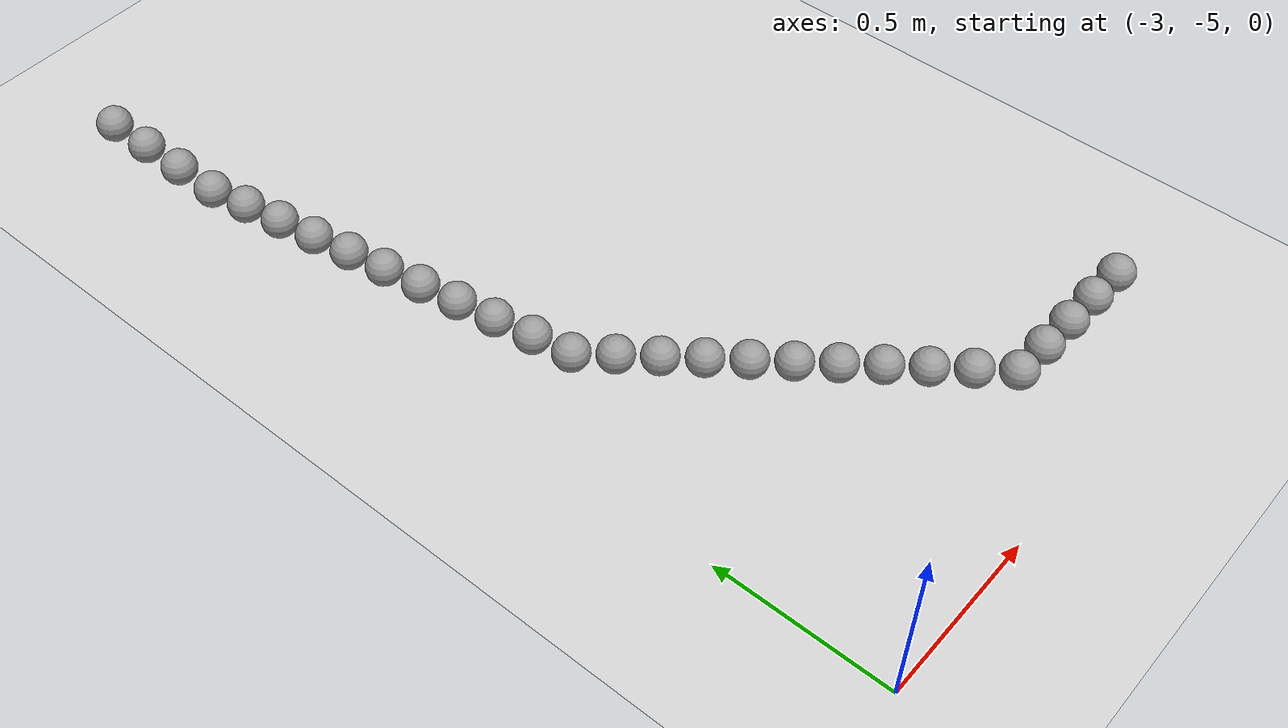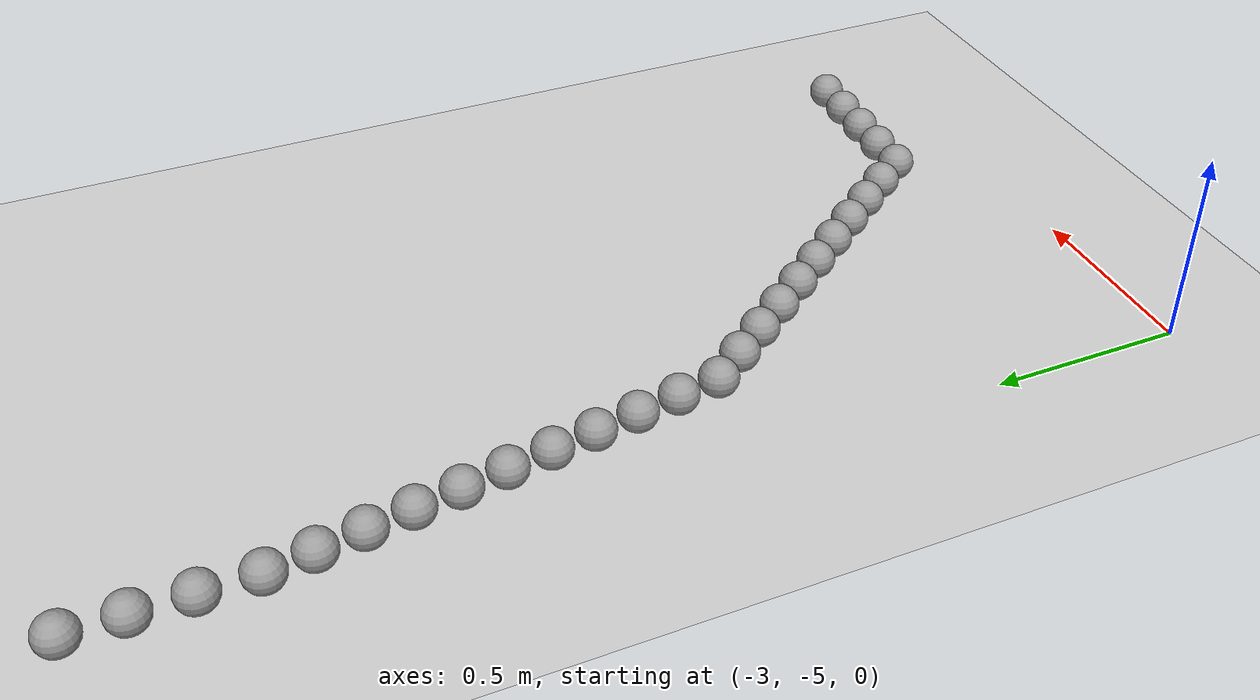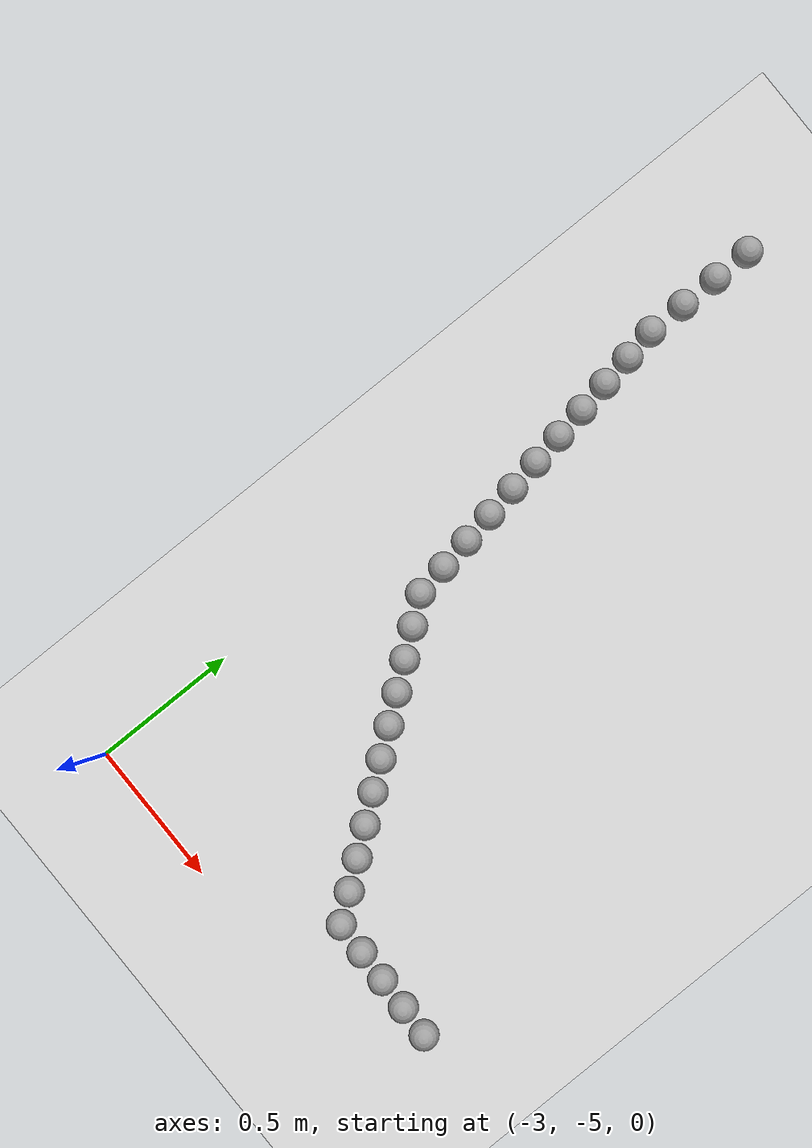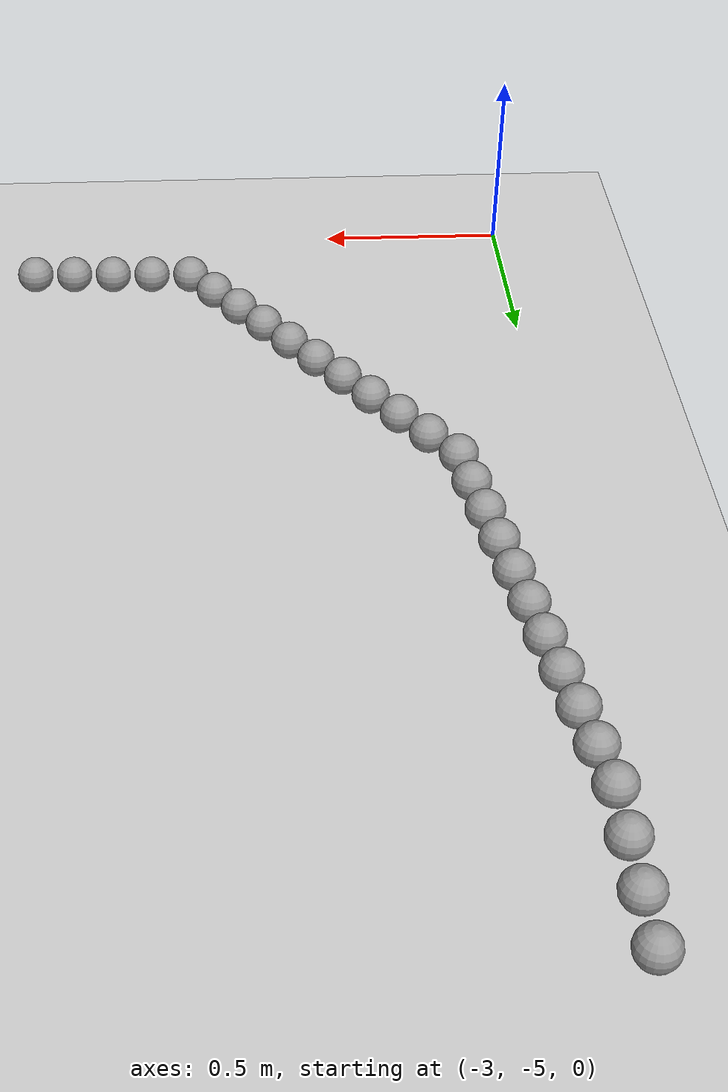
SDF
<sdf version="1.6">
 <world name="default">
  <model name="ground_plane">
   <static>1</static>
   <link name="link">
    <collision name="collision">
     <geometry><plane><normal>0 0 1</normal><size>100 100</size></plane></geometry>
     <surface><friction><ode><mu>100</mu><mu2>50</mu2></ode></friction></surface>
    </collision>
    <visual name="visual">
     <cast_shadows>0</cast_shadows>
     <geometry><plane><normal>0 0 1</normal><size>100 100</size></plane></geometry>
     <material>
      <script><uri>file://media/materials/scripts/gazebo.material</uri><name>Gazebo/Grey</name></script>
     </material>
    </visual>
   </link>
  </model>
  <model name="unit_sphere_0_77">
   <pose>-2.953000 -2.355000 0.050000 0 -0 0</pose>
   <link name="link">
    <inertial>
     <mass>1</mass>
     <inertia><ixx>0.1</ixx><ixy>0</ixy><ixz>0</ixz><iyy>0.1</iyy><iyz>0</iyz><izz>0.1</izz></inertia>
    </inertial>
    <collision name="collision"><geometry><sphere><radius>0.050000</radius></sphere></geometry></collision>
    <visual name="visual">
     <geometry><sphere><radius>0.050000</radius></sphere></geometry>
     <material>
      <script><name>Gazebo/Grey</name><uri>file://media/materials/scripts/gazebo.material</uri></script>
     </material>
    </visual>
   </link>
  </model>
  <model name="unit_sphere_0_78">
   <pose>-2.952000 -2.490000 0.050000 0 -0 0</pose>
   <link name="link">
    <inertial>
     <mass>1</mass>
     <inertia><ixx>0.1</ixx><ixy>0</ixy><ixz>0</ixz><iyy>0.1</iyy><iyz>0</iyz><izz>0.1</izz></inertia>
    </inertial>
    <collision name="collision"><geometry><sphere><radius>0.050000</radius></sphere></geometry></collision>
    <visual name="visual">
     <geometry><sphere><radius>0.050000</radius></sphere></geometry>
     <material>
      <script><name>Gazebo/Grey</name><uri>file://media/materials/scripts/gazebo.material</uri></script>
     </material>
    </visual>
   </link>
  </model>
  <model name="unit_sphere_0_79">
   <pose>-2.951000 -2.625000 0.050000 0 -0 0</pose>
   <link name="link">
    <inertial>
     <mass>1</mass>
     <inertia><ixx>0.1</ixx><ixy>0</ixy><ixz>0</ixz><iyy>0.1</iyy><iyz>0</iyz><izz>0.1</izz></inertia>
    </inertial>
    <collision name="collision"><geometry><sphere><radius>0.050000</radius></sphere></geometry></collision>
    <visual name="visual">
     <geometry><sphere><radius>0.050000</radius></sphere></geometry>
     <material>
      <script><name>Gazebo/Grey</name><uri>file://media/materials/scripts/gazebo.material</uri></script>
     </material>
    </visual>
   </link>
  </model>
  <model name="unit_sphere_0_80">
   <pose>-2.950000 -2.760000 0.050000 0 -0 0</pose>
   <link name="link">
    <inertial>
     <mass>1</mass>
     <inertia><ixx>0.1</ixx><ixy>0</ixy><ixz>0</ixz><iyy>0.1</iyy><iyz>0</iyz><izz>0.1</izz></inertia>
    </inertial>
    <collision name="collision"><geometry><sphere><radius>0.050000</radius></sphere></geometry></collision>
    <visual name="visual">
     <geometry><sphere><radius>0.050000</radius></sphere></geometry>
     <material>
      <script><name>Gazebo/Grey</name><uri>file://media/materials/scripts/gazebo.material</uri></script>
     </material>
    </visual>
   </link>
  </model>
  <model name="unit_sphere_0_81">
   <pose>-2.931000 -2.871000 0.050000 0 -0 0</pose>
   <link name="link">
    <inertial>
     <mass>1</mass>
     <inertia><ixx>0.1</ixx><ixy>0</ixy><ixz>0</ixz><iyy>0.1</iyy><iyz>0</iyz><izz>0.1</izz></inertia>
    </inertial>
    <collision name="collision"><geometry><sphere><radius>0.050000</radius></sphere></geometry></collision>
    <visual name="visual">
     <geometry><sphere><radius>0.050000</radius></sphere></geometry>
     <material>
      <script><name>Gazebo/Grey</name><uri>file://media/materials/scripts/gazebo.material</uri></script>
     </material>
    </visual>
   </link>
  </model>
  <model name="unit_sphere_0_82">
   <pose>-2.912000 -2.982000 0.050000 0 -0 0</pose>
   <link name="link">
    <inertial>
     <mass>1</mass>
     <inertia><ixx>0.1</ixx><ixy>0</ixy><ixz>0</ixz><iyy>0.1</iyy><iyz>0</iyz><izz>0.1</izz></inertia>
    </inertial>
    <collision name="collision"><geometry><sphere><radius>0.050000</radius></sphere></geometry></collision>
    <visual name="visual">
     <geometry><sphere><radius>0.050000</radius></sphere></geometry>
     <material>
      <script><name>Gazebo/Grey</name><uri>file://media/materials/scripts/gazebo.material</uri></script>
     </material>
    </visual>
   </link>
  </model>
  <model name="unit_sphere_0_83">
   <pose>-2.893000 -3.093000 0.050000 0 -0 0</pose>
   <link name="link">
    <inertial>
     <mass>1</mass>
     <inertia><ixx>0.1</ixx><ixy>0</ixy><ixz>0</ixz><iyy>0.1</iyy><iyz>0</iyz><izz>0.1</izz></inertia>
    </inertial>
    <collision name="collision"><geometry><sphere><radius>0.050000</radius></sphere></geometry></collision>
    <visual name="visual">
     <geometry><sphere><radius>0.050000</radius></sphere></geometry>
     <material>
      <script><name>Gazebo/Grey</name><uri>file://media/materials/scripts/gazebo.material</uri></script>
     </material>
    </visual>
   </link>
  </model>
  <model name="unit_sphere_0_84">
   <pose>-2.874000 -3.204000 0.050000 0 -0 0</pose>
   <link name="link">
    <inertial>
     <mass>1</mass>
     <inertia><ixx>0.1</ixx><ixy>0</ixy><ixz>0</ixz><iyy>0.1</iyy><iyz>0</iyz><izz>0.1</izz></inertia>
    </inertial>
    <collision name="collision"><geometry><sphere><radius>0.050000</radius></sphere></geometry></collision>
    <visual name="visual">
     <geometry><sphere><radius>0.050000</radius></sphere></geometry>
     <material>
      <script><name>Gazebo/Grey</name><uri>file://media/materials/scripts/gazebo.material</uri></script>
     </material>
    </visual>
   </link>
  </model>
  <model name="unit_sphere_0_85">
   <pose>-2.855000 -3.315000 0.050000 0 -0 0</pose>
   <link name="link">
    <inertial>
     <mass>1</mass>
     <inertia><ixx>0.1</ixx><ixy>0</ixy><ixz>0</ixz><iyy>0.1</iyy><iyz>0</iyz><izz>0.1</izz></inertia>
    </inertial>
    <collision name="collision"><geometry><sphere><radius>0.050000</radius></sphere></geometry></collision>
    <visual name="visual">
     <geometry><sphere><radius>0.050000</radius></sphere></geometry>
     <material>
      <script><name>Gazebo/Grey</name><uri>file://media/materials/scripts/gazebo.material</uri></script>
     </material>
    </visual>
   </link>
  </model>
  <model name="unit_sphere_0_86">
   <pose>-2.836000 -3.426000 0.050000 0 -0 0</pose>
   <link name="link">
    <inertial>
     <mass>1</mass>
     <inertia><ixx>0.1</ixx><ixy>0</ixy><ixz>0</ixz><iyy>0.1</iyy><iyz>0</iyz><izz>0.1</izz></inertia>
    </inertial>
    <collision name="collision"><geometry><sphere><radius>0.050000</radius></sphere></geometry></collision>
    <visual name="visual">
     <geometry><sphere><radius>0.050000</radius></sphere></geometry>
     <material>
      <script><name>Gazebo/Grey</name><uri>file://media/materials/scripts/gazebo.material</uri></script>
     </material>
    </visual>
   </link>
  </model>
  <model name="unit_sphere_0_87">
   <pose>-2.817000 -3.537000 0.050000 0 -0 0</pose>
   <link name="link">
    <inertial>
     <mass>1</mass>
     <inertia><ixx>0.1</ixx><ixy>0</ixy><ixz>0</ixz><iyy>0.1</iyy><iyz>0</iyz><izz>0.1</izz></inertia>
    </inertial>
    <collision name="collision"><geometry><sphere><radius>0.050000</radius></sphere></geometry></collision>
    <visual name="visual">
     <geometry><sphere><radius>0.050000</radius></sphere></geometry>
     <material>
      <script><name>Gazebo/Grey</name><uri>file://media/materials/scripts/gazebo.material</uri></script>
     </material>
    </visual>
   </link>
  </model>
  <model name="unit_sphere_0_88">
   <pose>-2.798000 -3.648000 0.050000 0 -0 0</pose>
   <link name="link">
    <inertial>
     <mass>1</mass>
     <inertia><ixx>0.1</ixx><ixy>0</ixy><ixz>0</ixz><iyy>0.1</iyy><iyz>0</iyz><izz>0.1</izz></inertia>
    </inertial>
    <collision name="collision"><geometry><sphere><radius>0.050000</radius></sphere></geometry></collision>
    <visual name="visual">
     <geometry><sphere><radius>0.050000</radius></sphere></geometry>
     <material>
      <script><name>Gazebo/Grey</name><uri>file://media/materials/scripts/gazebo.material</uri></script>
     </material>
    </visual>
   </link>
  </model>
  <model name="unit_sphere_0_89">
   <pose>-2.779000 -3.759000 0.050000 0 -0 0</pose>
   <link name="link">
    <inertial>
     <mass>1</mass>
     <inertia><ixx>0.1</ixx><ixy>0</ixy><ixz>0</ixz><iyy>0.1</iyy><iyz>0</iyz><izz>0.1</izz></inertia>
    </inertial>
    <collision name="collision"><geometry><sphere><radius>0.050000</radius></sphere></geometry></collision>
    <visual name="visual">
     <geometry><sphere><radius>0.050000</radius></sphere></geometry>
     <material>
      <script><name>Gazebo/Grey</name><uri>file://media/materials/scripts/gazebo.material</uri></script>
     </material>
    </visual>
   </link>
  </model>
  <model name="unit_sphere_0_90">
   <pose>-2.760000 -3.870000 0.050000 0 -0 0</pose>
   <link name="link">
    <inertial>
     <mass>1</mass>
     <inertia><ixx>0.1</ixx><ixy>0</ixy><ixz>0</ixz><iyy>0.1</iyy><iyz>0</iyz><izz>0.1</izz></inertia>
    </inertial>
    <collision name="collision"><geometry><sphere><radius>0.050000</radius></sphere></geometry></collision>
    <visual name="visual">
     <geometry><sphere><radius>0.050000</radius></sphere></geometry>
     <material>
      <script><name>Gazebo/Grey</name><uri>file://media/materials/scripts/gazebo.material</uri></script>
     </material>
    </visual>
   </link>
  </model>
  <model name="unit_sphere_0_91">
   <pose>-2.693000 -3.957000 0.050000 0 -0 0</pose>
   <link name="link">
    <inertial>
     <mass>1</mass>
     <inertia><ixx>0.1</ixx><ixy>0</ixy><ixz>0</ixz><iyy>0.1</iyy><iyz>0</iyz><izz>0.1</izz></inertia>
    </inertial>
    <collision name="collision"><geometry><sphere><radius>0.050000</radius></sphere></geometry></collision>
    <visual name="visual">
     <geometry><sphere><radius>0.050000</radius></sphere></geometry>
     <material>
      <script><name>Gazebo/Grey</name><uri>file://media/materials/scripts/gazebo.material</uri></script>
     </material>
    </visual>
   </link>
  </model>
  <model name="unit_sphere_0_92">
   <pose>-2.626000 -4.044000 0.050000 0 -0 0</pose>
   <link name="link">
    <inertial>
     <mass>1</mass>
     <inertia><ixx>0.1</ixx><ixy>0</ixy><ixz>0</ixz><iyy>0.1</iyy><iyz>0</iyz><izz>0.1</izz></inertia>
    </inertial>
    <collision name="collision"><geometry><sphere><radius>0.050000</radius></sphere></geometry></collision>
    <visual name="visual">
     <geometry><sphere><radius>0.050000</radius></sphere></geometry>
     <material>
      <script><name>Gazebo/Grey</name><uri>file://media/materials/scripts/gazebo.material</uri></script>
     </material>
    </visual>
   </link>
  </model>
  <model name="unit_sphere_0_93">
   <pose>-2.559000 -4.131000 0.050000 0 -0 0</pose>
   <link name="link">
    <inertial>
     <mass>1</mass>
     <inertia><ixx>0.1</ixx><ixy>0</ixy><ixz>0</ixz><iyy>0.1</iyy><iyz>0</iyz><izz>0.1</izz></inertia>
    </inertial>
    <collision name="collision"><geometry><sphere><radius>0.050000</radius></sphere></geometry></collision>
    <visual name="visual">
     <geometry><sphere><radius>0.050000</radius></sphere></geometry>
     <material>
      <script><name>Gazebo/Grey</name><uri>file://media/materials/scripts/gazebo.material</uri></script>
     </material>
    </visual>
   </link>
  </model>
  <model name="unit_sphere_0_94">
   <pose>-2.492000 -4.218000 0.050000 0 -0 0</pose>
   <link name="link">
    <inertial>
     <mass>1</mass>
     <inertia><ixx>0.1</ixx><ixy>0</ixy><ixz>0</ixz><iyy>0.1</iyy><iyz>0</iyz><izz>0.1</izz></inertia>
    </inertial>
    <collision name="collision"><geometry><sphere><radius>0.050000</radius></sphere></geometry></collision>
    <visual name="visual">
     <geometry><sphere><radius>0.050000</radius></sphere></geometry>
     <material>
      <script><name>Gazebo/Grey</name><uri>file://media/materials/scripts/gazebo.material</uri></script>
     </material>
    </visual>
   </link>
  </model>
  <model name="unit_sphere_0_95">
   <pose>-2.425000 -4.305000 0.050000 0 -0 0</pose>
   <link name="link">
    <inertial>
     <mass>1</mass>
     <inertia><ixx>0.1</ixx><ixy>0</ixy><ixz>0</ixz><iyy>0.1</iyy><iyz>0</iyz><izz>0.1</izz></inertia>
    </inertial>
    <collision name="collision"><geometry><sphere><radius>0.050000</radius></sphere></geometry></collision>
    <visual name="visual">
     <geometry><sphere><radius>0.050000</radius></sphere></geometry>
     <material>
      <script><name>Gazebo/Grey</name><uri>file://media/materials/scripts/gazebo.material</uri></script>
     </material>
    </visual>
   </link>
  </model>
  <model name="unit_sphere_0_96">
   <pose>-2.358000 -4.392000 0.050000 0 -0 0</pose>
   <link name="link">
    <inertial>
     <mass>1</mass>
     <inertia><ixx>0.1</ixx><ixy>0</ixy><ixz>0</ixz><iyy>0.1</iyy><iyz>0</iyz><izz>0.1</izz></inertia>
    </inertial>
    <collision name="collision"><geometry><sphere><radius>0.050000</radius></sphere></geometry></collision>
    <visual name="visual">
     <geometry><sphere><radius>0.050000</radius></sphere></geometry>
     <material>
      <script><name>Gazebo/Grey</name><uri>file://media/materials/scripts/gazebo.material</uri></script>
     </material>
    </visual>
   </link>
  </model>
  <model name="unit_sphere_0_97">
   <pose>-2.291000 -4.479000 0.050000 0 -0 0</pose>
   <link name="link">
    <inertial>
     <mass>1</mass>
     <inertia><ixx>0.1</ixx><ixy>0</ixy><ixz>0</ixz><iyy>0.1</iyy><iyz>0</iyz><izz>0.1</izz></inertia>
    </inertial>
    <collision name="collision"><geometry><sphere><radius>0.050000</radius></sphere></geometry></collision>
    <visual name="visual">
     <geometry><sphere><radius>0.050000</radius></sphere></geometry>
     <material>
      <script><name>Gazebo/Grey</name><uri>file://media/materials/scripts/gazebo.material</uri></script>
     </material>
    </visual>
   </link>
  </model>
  <model name="unit_sphere_0_98">
   <pose>-2.224000 -4.566000 0.050000 0 -0 0</pose>
   <link name="link">
    <inertial>
     <mass>1</mass>
     <inertia><ixx>0.1</ixx><ixy>0</ixy><ixz>0</ixz><iyy>0.1</iyy><iyz>0</iyz><izz>0.1</izz></inertia>
    </inertial>
    <collision name="collision"><geometry><sphere><radius>0.050000</radius></sphere></geometry></collision>
    <visual name="visual">
     <geometry><sphere><radius>0.050000</radius></sphere></geometry>
     <material>
      <script><name>Gazebo/Grey</name><uri>file://media/materials/scripts/gazebo.material</uri></script>
     </material>
    </visual>
   </link>
  </model>
  <model name="unit_sphere_0_99">
   <pose>-2.157000 -4.653000 0.050000 0 -0 0</pose>
   <link name="link">
    <inertial>
     <mass>1</mass>
     <inertia><ixx>0.1</ixx><ixy>0</ixy><ixz>0</ixz><iyy>0.1</iyy><iyz>0</iyz><izz>0.1</izz></inertia>
    </inertial>
    <collision name="collision"><geometry><sphere><radius>0.050000</radius></sphere></geometry></collision>
    <visual name="visual">
     <geometry><sphere><radius>0.050000</radius></sphere></geometry>
     <material>
      <script><name>Gazebo/Grey</name><uri>file://media/materials/scripts/gazebo.material</uri></script>
     </material>
    </visual>
   </link>
  </model>
  <model name="unit_sphere_0_100">
   <pose>-2.090000 -4.740000 0.050000 0 -0 0</pose>
   <link name="link">
    <inertial>
     <mass>1</mass>
     <inertia><ixx>0.1</ixx><ixy>0</ixy><ixz>0</ixz><iyy>0.1</iyy><iyz>0</iyz><izz>0.1</izz></inertia>
    </inertial>
    <collision name="collision"><geometry><sphere><radius>0.050000</radius></sphere></geometry></collision>
    <visual name="visual">
     <geometry><sphere><radius>0.050000</radius></sphere></geometry>
     <material>
      <script><name>Gazebo/Grey</name><uri>file://media/materials/scripts/gazebo.material</uri></script>
     </material>
    </visual>
   </link>
  </model>
  <model name="unit_sphere_0_101">
   <pose>-1.979000 -4.744000 0.050000 0 -0 0</pose>
   <link name="link">
    <inertial>
     <mass>1</mass>
     <inertia><ixx>0.1</ixx><ixy>0</ixy><ixz>0</ixz><iyy>0.1</iyy><iyz>0</iyz><izz>0.1</izz></inertia>
    </inertial>
    <collision name="collision"><geometry><sphere><radius>0.050000</radius></sphere></geometry></collision>
    <visual name="visual">
     <geometry><sphere><radius>0.050000</radius></sphere></geometry>
     <material>
      <script><name>Gazebo/Grey</name><uri>file://media/materials/scripts/gazebo.material</uri></script>
     </material>
    </visual>
   </link>
  </model>
  <model name="unit_sphere_0_102">
   <pose>-1.868000 -4.748000 0.050000 0 -0 0</pose>
   <link name="link">
    <inertial>
     <mass>1</mass>
     <inertia><ixx>0.1</ixx><ixy>0</ixy><ixz>0</ixz><iyy>0.1</iyy><iyz>0</iyz><izz>0.1</izz></inertia>
    </inertial>
    <collision name="collision"><geometry><sphere><radius>0.050000</radius></sphere></geometry></collision>
    <visual name="visual">
     <geometry><sphere><radius>0.050000</radius></sphere></geometry>
     <material>
      <script><name>Gazebo/Grey</name><uri>file://media/materials/scripts/gazebo.material</uri></script>
     </material>
    </visual>
   </link>
  </model>
  <model name="unit_sphere_0_103">
   <pose>-1.757000 -4.752000 0.050000 0 -0 0</pose>
   <link name="link">
    <inertial>
     <mass>1</mass>
     <inertia><ixx>0.1</ixx><ixy>0</ixy><ixz>0</ixz><iyy>0.1</iyy><iyz>0</iyz><izz>0.1</izz></inertia>
    </inertial>
    <collision name="collision"><geometry><sphere><radius>0.050000</radius></sphere></geometry></collision>
    <visual name="visual">
     <geometry><sphere><radius>0.050000</radius></sphere></geometry>
     <material>
      <script><name>Gazebo/Grey</name><uri>file://media/materials/scripts/gazebo.material</uri></script>
     </material>
    </visual>
   </link>
  </model>
  <model name="unit_sphere_0_104">
   <pose>-1.646000 -4.756000 0.050000 0 -0 0</pose>
   <link name="link">
    <inertial>
     <mass>1</mass>
     <inertia><ixx>0.1</ixx><ixy>0</ixy><ixz>0</ixz><iyy>0.1</iyy><iyz>0</iyz><izz>0.1</izz></inertia>
    </inertial>
    <collision name="collision"><geometry><sphere><radius>0.050000</radius></sphere></geometry></collision>
    <visual name="visual">
     <geometry><sphere><radius>0.050000</radius></sphere></geometry>
     <material>
      <script><name>Gazebo/Grey</name><uri>file://media/materials/scripts/gazebo.material</uri></script>
     </material>
    </visual>
   </link>
  </model>
 </world>
</sdf>
